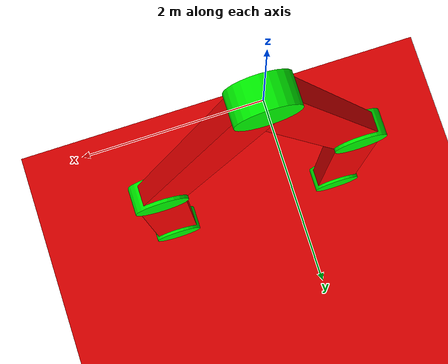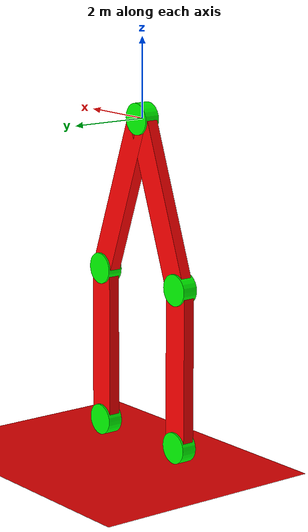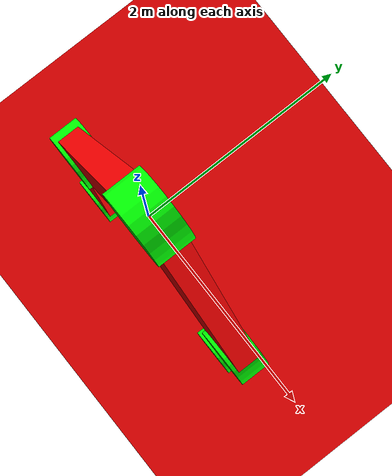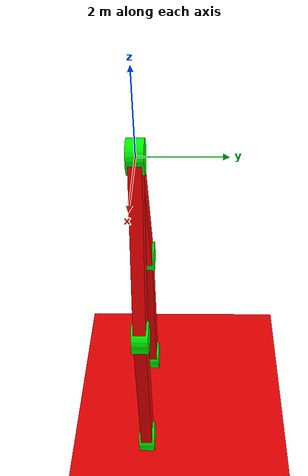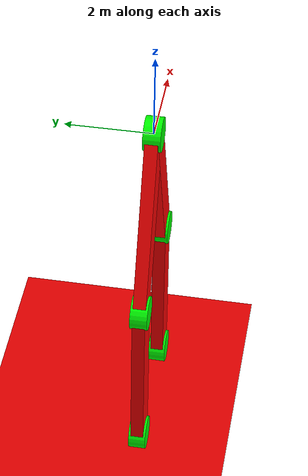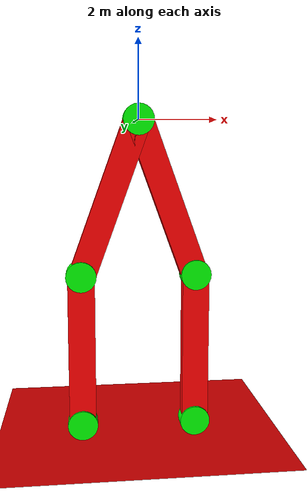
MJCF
<mujoco>
    <asset>
        <material name="blue_" rgba="0 0 1 1" />
        <material name="green" rgba="0 1 0 1" />
        <material name="red__" rgba="1 0 0 1" />
        <material name="white" rgba="1 1 1 1" />
    </asset>
    <worldbody>
        <geom type="plane" size="10 10 0.1" pos="0 0 -8.5" rgba=".9 0 0 1" />
        <light diffuse=".5 .5 .5" pos="0 0 3" dir="0 0 -1" />
        <body>
            <geom type="cylinder" size="0.396 0.2" euler="90 0 0" material="green" />
            <joint type="free"/>
            <body pos="0 0 -2">
               <geom type="box" size="0.15 2 0.35" pos="0.75 0 0" euler="0 70 90" material="red__"/>
                <joint axis="0 1 0" pos="0 0 2"/>
                <body pos="1.5 0 -2">
                    <body name="link_1" pos="0 0 0">
                        <geom type="cylinder" size="0.396 0.2" euler="90 0 0" material="green" mass="0.02"/>
                        <joint axis="0 1 0"/>
                        <body>
                            <geom type="box" size="0.15 2 0.35" pos="0 0 -2" euler="90 90 0" material="red__"/>
                            <body pos="0 0 -4" name="joint1">
                                <geom type="cylinder" size="0.396 0.2" euler="90 0 0" material="green" mass="0.02"/>
                                <joint name="hinge_1" pos="0 0 0" axis="0 1 0" />
                            </body>
                        </body>
                    </body>
                </body>
            </body>

            <body pos="0 0 -2">
               <geom type="box" size="0.15 2 0.35" pos="-0.75 0 0" euler="0 110 90" material="red__"/>
                <joint axis="0 1 0" pos="0 0 2"/>
                <body pos="-1.5 0 -2">
                    <body name="link_2">
                        <geom type="cylinder" size="0.396 0.2" euler="90 0 0" material="green" mass="0.02"/>
                        <joint axis="0 1 0"/>
                        <body>
                            <geom type="box" size="0.15 2 0.35" pos="0 0 -2" euler="90 90 0" material="red__"/>
                            <body name="joint2" pos="0 0 -4">
                                <geom type="cylinder" size="0.396 0.2" euler="90 0 0" material="green" mass="0.02" />
                                <joint name="hinge_2" pos="0 0 0" axis="0 1 0" />
                            </body>
                        </body>
                    </body>
                </body>
            </body>
        </body>
    </worldbody>
    <equality>
        <connect body1="joint2" body2="joint1" anchor="0 0 -4"/>
    </equality>

</mujoco>
